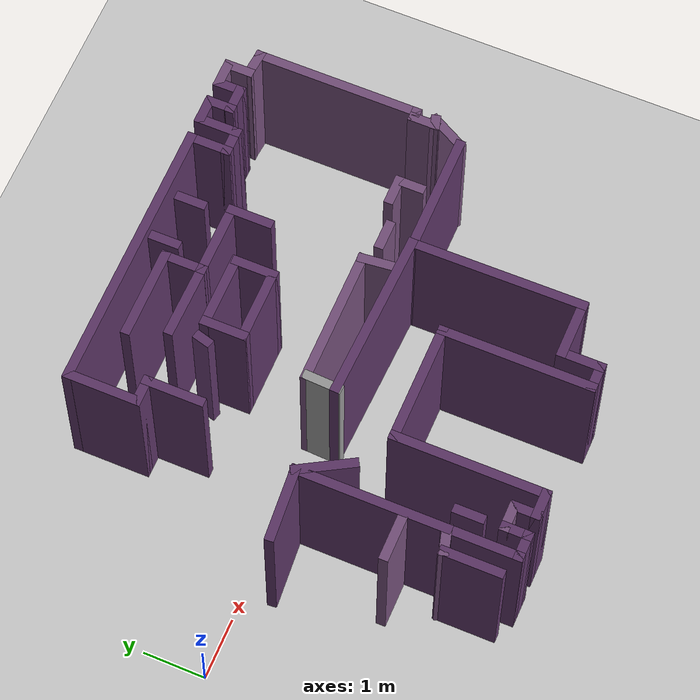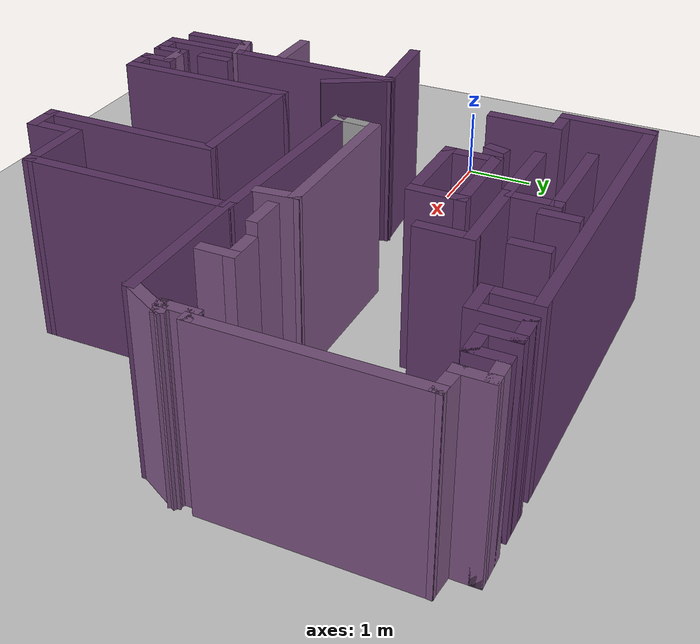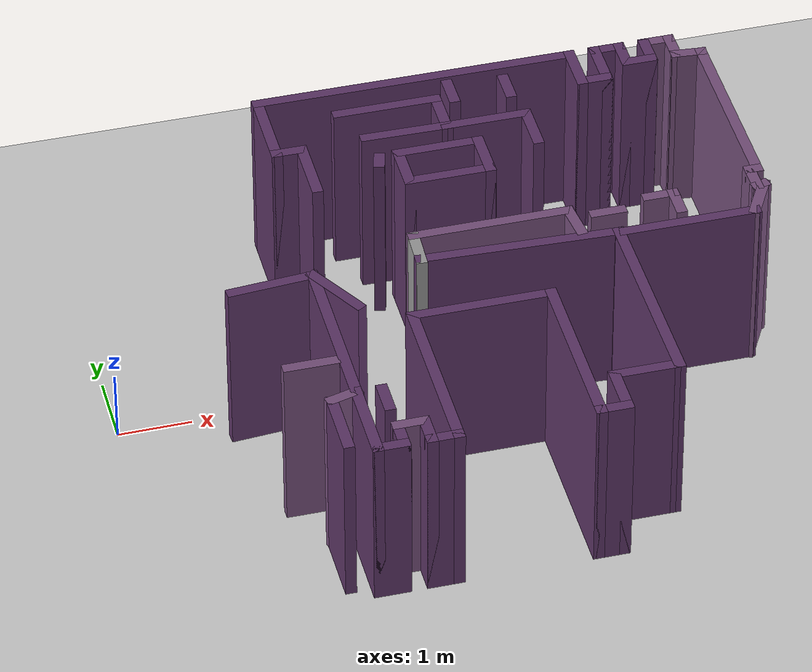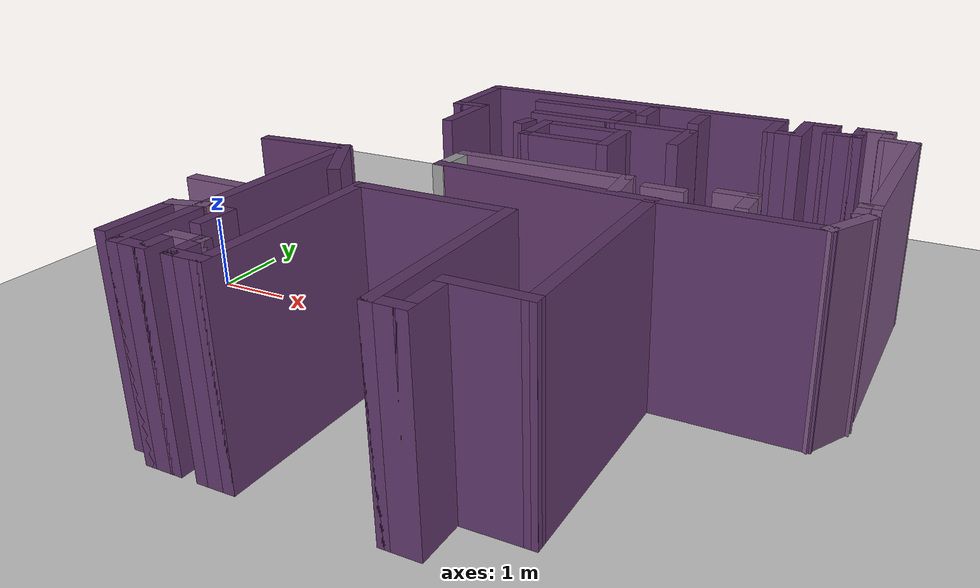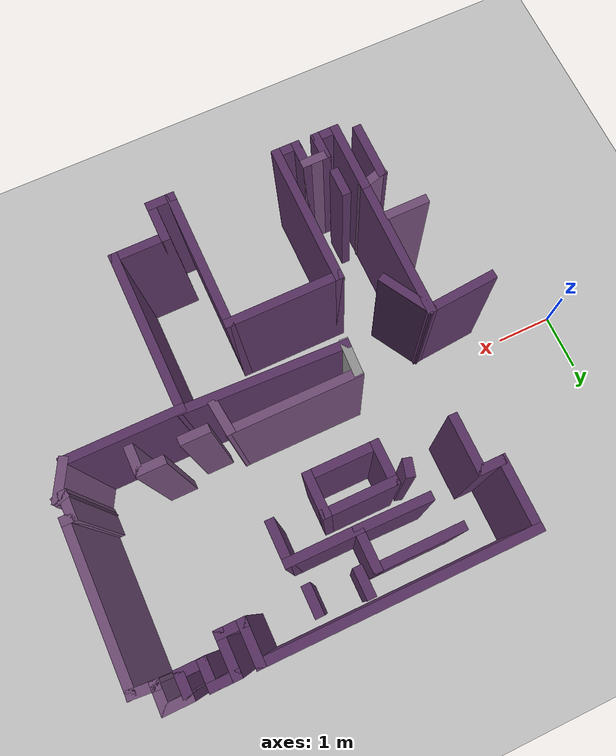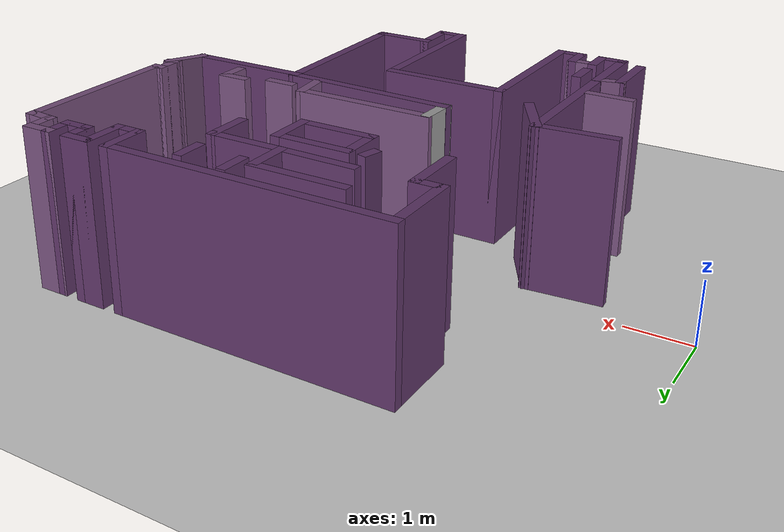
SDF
<sdf version="1.6">
 <world name="default">
  <model name="ground_plane">
   <static>1</static>
   <link name="link">
    <collision name="collision">
     <geometry><plane><normal>0 0 1</normal><size>100 100</size></plane></geometry>
     <surface>
      <contact><collide_bitmask>65535</collide_bitmask></contact>
      <friction><ode><mu>100</mu><mu2>50</mu2></ode></friction>
     </surface>
    </collision>
    <visual name="visual">
     <cast_shadows>0</cast_shadows>
     <geometry><plane><normal>0 0 1</normal><size>100 100</size></plane></geometry>
     <material>
      <script><uri>file://media/materials/scripts/gazebo.material</uri><name>Gazebo/Grey</name></script>
     </material>
    </visual>
   </link>
  </model>
  <model name="map_35">
   <pose>1.49139 -0.27307 0 0 -0 0</pose>
   <link name="Wall_0">
    <collision name="Wall_0_Collision">
     <geometry><box><size>4.5 0.15 2.5</size></box></geometry>
     <pose>0 0 1.25 0 -0 0</pose>
    </collision>
    <visual name="Wall_0_Visual">
     <pose>0 0 1.25 0 -0 0</pose>
     <geometry><box><size>4.5 0.15 2.5</size></box></geometry>
     <material>
      <script><uri>file://media/materials/scripts/gazebo.material</uri><name>Gazebo/Grey</name></script>
      <ambient>0.360784 0.207843 0.4 1</ambient>
     </material>
     <meta><layer>0</layer></meta>
    </visual>
    <pose>3.38761 3.57249 0 0 -0 3.14159</pose>
   </link>
   <link name="Wall_1">
    <collision name="Wall_1_Collision">
     <geometry><box><size>1.25 0.15 2.5</size></box></geometry>
     <pose>0 0 1.25 0 -0 0</pose>
    </collision>
    <visual name="Wall_1_Visual">
     <pose>0 0 1.25 0 -0 0</pose>
     <geometry><box><size>1.25 0.15 2.5</size></box></geometry>
     <material>
      <script><uri>file://media/materials/scripts/gazebo.material</uri><name>Gazebo/Grey</name></script>
      <ambient>0.360784 0.207843 0.4 1</ambient>
     </material>
     <meta><layer>0</layer></meta>
    </visual>
    <pose>1.21261 3.02249 0 0 -0 -1.5708</pose>
   </link>
   <link name="Wall_103">
    <collision name="Wall_103_Collision">
     <geometry><box><size>2 0.15 2.5</size></box></geometry>
     <pose>0 0 1.25 0 -0 0</pose>
    </collision>
    <visual name="Wall_103_Visual">
     <pose>0 0 1.25 0 -0 0</pose>
     <geometry><box><size>2 0.15 2.5</size></box></geometry>
     <material>
      <script><uri>file://media/materials/scripts/gazebo.material</uri><name>Gazebo/Grey</name></script>
      <ambient>0.360784 0.207843 0.4 1</ambient>
     </material>
     <meta><layer>0</layer></meta>
    </visual>
    <pose>6.1106 -0.231333 0 0 -0 0</pose>
   </link>
   <link name="Wall_104">
    <collision name="Wall_104_Collision">
     <geometry><box><size>0.717797 0.15 2.5</size></box></geometry>
     <pose>0 0 1.25 0 -0 0</pose>
    </collision>
    <visual name="Wall_104_Visual">
     <pose>0 0 1.25 0 -0 0</pose>
     <geometry><box><size>0.717797 0.15 2.5</size></box></geometry>
     <material>
      <script><uri>file://media/materials/scripts/gazebo.material</uri><name>Gazebo/Grey</name></script>
      <ambient>0.458824 0.313726 0.482353 1</ambient>
     </material>
     <meta><layer>0</layer></meta>
    </visual>
    <pose>7.17066 0.018383 0 0 -0 1.07501</pose>
   </link>
   <link name="Wall_105">
    <collision name="Wall_105_Collision">
     <geometry><box><size>0.25 0.15 2.5</size></box></geometry>
     <pose>0 0 1.25 0 -0 0</pose>
    </collision>
    <visual name="Wall_105_Visual">
     <pose>0 0 1.25 0 -0 0</pose>
     <geometry><box><size>0.25 0.15 2.5</size></box></geometry>
     <material>
      <script><uri>file://media/materials/scripts/gazebo.material</uri><name>Gazebo/Grey</name></script>
      <ambient>0.458824 0.313726 0.482353 1</ambient>
     </material>
     <meta><layer>0</layer></meta>
    </visual>
    <pose>7.25742 0.255158 0 0 -0 -2.87979</pose>
   </link>
   <link name="Wall_106">
    <collision name="Wall_106_Collision">
     <geometry><box><size>0.5 0.15 2.5</size></box></geometry>
     <pose>0 0 1.25 0 -0 0</pose>
    </collision>
    <visual name="Wall_106_Visual">
     <pose>0 0 1.25 0 -0 0</pose>
     <geometry><box><size>0.5 0.15 2.5</size></box></geometry>
     <material>
      <script><uri>file://media/materials/scripts/gazebo.material</uri><name>Gazebo/Grey</name></script>
      <ambient>0.458824 0.313726 0.482353 1</ambient>
     </material>
     <meta><layer>0</layer></meta>
    </visual>
    <pose>7.20912 0.417217 0 0 -0 1.5708</pose>
   </link>
   <link name="Wall_107">
    <collision name="Wall_107_Collision">
     <geometry><box><size>0.25 0.15 2.5</size></box></geometry>
     <pose>0 0 1.25 0 -0 0</pose>
    </collision>
    <visual name="Wall_107_Visual">
     <pose>0 0 1.25 0 -0 0</pose>
     <geometry><box><size>0.25 0.15 2.5</size></box></geometry>
     <material>
      <script><uri>file://media/materials/scripts/gazebo.material</uri><name>Gazebo/Grey</name></script>
      <ambient>0.458824 0.313726 0.482353 1</ambient>
     </material>
     <meta><layer>0</layer></meta>
    </visual>
    <pose>7.25912 0.592217 0 0 -0 0</pose>
   </link>
   <link name="Wall_108">
    <collision name="Wall_108_Collision">
     <geometry><box><size>2.75 0.15 2.5</size></box></geometry>
     <pose>0 0 1.25 0 -0 0</pose>
    </collision>
    <visual name="Wall_108_Visual">
     <pose>0 0 1.25 0 -0 0</pose>
     <geometry><box><size>2.75 0.15 2.5</size></box></geometry>
     <material>
      <script><uri>file://media/materials/scripts/gazebo.material</uri><name>Gazebo/Grey</name></script>
      <ambient>0.458824 0.313726 0.482353 1</ambient>
     </material>
     <meta><layer>0</layer></meta>
    </visual>
    <pose>7.30912 1.89222 0 0 -0 1.5708</pose>
   </link>
   <link name="Wall_115">
    <collision name="Wall_115_Collision">
     <geometry><box><size>0.75 0.15 2.5</size></box></geometry>
     <pose>0 0 1.25 0 -0 0</pose>
    </collision>
    <visual name="Wall_115_Visual">
     <pose>0 0 1.25 0 -0 0</pose>
     <geometry><box><size>0.75 0.15 2.5</size></box></geometry>
     <material>
      <script><uri>file://media/materials/scripts/gazebo.material</uri><name>Gazebo/Grey</name></script>
      <ambient>0.360784 0.207843 0.4 1</ambient>
     </material>
     <meta><layer>0</layer></meta>
    </visual>
    <pose>5.56261 3.27249 0 0 -0 -1.5708</pose>
   </link>
   <link name="Wall_116">
    <collision name="Wall_116_Collision">
     <geometry><box><size>0.5 0.15 2.5</size></box></geometry>
     <pose>0 0 1.25 0 -0 0</pose>
    </collision>
    <visual name="Wall_116_Visual">
     <pose>0 0 1.25 0 -0 0</pose>
     <geometry><box><size>0.5 0.15 2.5</size></box></geometry>
     <material>
      <script><uri>file://media/materials/scripts/gazebo.material</uri><name>Gazebo/Grey</name></script>
      <ambient>0.360784 0.207843 0.4 1</ambient>
     </material>
     <meta><layer>0</layer></meta>
    </visual>
    <pose>5.73761 2.97249 0 0 -0 0</pose>
   </link>
   <link name="Wall_119">
    <collision name="Wall_119_Collision">
     <geometry><box><size>0.75 0.15 2.5</size></box></geometry>
     <pose>0 0 1.25 0 -0 0</pose>
    </collision>
    <visual name="Wall_119_Visual">
     <pose>0 0 1.25 0 -0 0</pose>
     <geometry><box><size>0.75 0.15 2.5</size></box></geometry>
     <material>
      <script><uri>file://media/materials/scripts/gazebo.material</uri><name>Gazebo/Grey</name></script>
      <ambient>0.360784 0.207843 0.4 1</ambient>
     </material>
     <meta><layer>0</layer></meta>
    </visual>
    <pose>5.91261 3.27249 0 0 -0 1.5708</pose>
   </link>
   <link name="Wall_120">
    <collision name="Wall_120_Collision">
     <geometry><box><size>0.5 0.15 2.5</size></box></geometry>
     <pose>0 0 1.25 0 -0 0</pose>
    </collision>
    <visual name="Wall_120_Visual">
     <pose>0 0 1.25 0 -0 0</pose>
     <geometry><box><size>0.5 0.15 2.5</size></box></geometry>
     <material>
      <script><uri>file://media/materials/scripts/gazebo.material</uri><name>Gazebo/Grey</name></script>
      <ambient>0.360784 0.207843 0.4 1</ambient>
     </material>
     <meta><layer>0</layer></meta>
    </visual>
    <pose>6.08761 3.57249 0 0 -0 0</pose>
   </link>
   <link name="Wall_121">
    <collision name="Wall_121_Collision">
     <geometry><box><size>0.5 0.15 2.5</size></box></geometry>
     <pose>0 0 1.25 0 -0 0</pose>
    </collision>
    <visual name="Wall_121_Visual">
     <pose>0 0 1.25 0 -0 0</pose>
     <geometry><box><size>0.5 0.15 2.5</size></box></geometry>
     <material>
      <script><uri>file://media/materials/scripts/gazebo.material</uri><name>Gazebo/Grey</name></script>
      <ambient>0.360784 0.207843 0.4 1</ambient>
     </material>
     <meta><layer>0</layer></meta>
    </visual>
    <pose>6.26261 3.39749 0 0 -0 -1.5708</pose>
   </link>
   <link name="Wall_122">
    <collision name="Wall_122_Collision">
     <geometry><box><size>0.5 0.15 2.5</size></box></geometry>
     <pose>0 0 1.25 0 -0 0</pose>
    </collision>
    <visual name="Wall_122_Visual">
     <pose>0 0 1.25 0 -0 0</pose>
     <geometry><box><size>0.5 0.15 2.5</size></box></geometry>
     <material>
      <script><uri>file://media/materials/scripts/gazebo.material</uri><name>Gazebo/Grey</name></script>
      <ambient>0.360784 0.207843 0.4 1</ambient>
     </material>
     <meta><layer>0</layer></meta>
    </visual>
    <pose>6.43761 3.22249 0 0 -0 0</pose>
   </link>
   <link name="Wall_123">
    <collision name="Wall_123_Collision">
     <geometry><box><size>0.5 0.15 2.5</size></box></geometry>
     <pose>0 0 1.25 0 -0 0</pose>
    </collision>
    <visual name="Wall_123_Visual">
     <pose>0 0 1.25 0 -0 0</pose>
     <geometry><box><size>0.5 0.15 2.5</size></box></geometry>
     <material>
      <script><uri>file://media/materials/scripts/gazebo.material</uri><name>Gazebo/Grey</name></script>
      <ambient>0.360784 0.207843 0.4 1</ambient>
     </material>
     <meta><layer>0</layer></meta>
    </visual>
    <pose>6.61261 3.39749 0 0 -0 1.5708</pose>
   </link>
   <link name="Wall_124">
    <collision name="Wall_124_Collision">
     <geometry><box><size>0.5 0.15 2.5</size></box></geometry>
     <pose>0 0 1.25 0 -0 0</pose>
    </collision>
    <visual name="Wall_124_Visual">
     <pose>0 0 1.25 0 -0 0</pose>
     <geometry><box><size>0.5 0.15 2.5</size></box></geometry>
     <material>
      <script><uri>file://media/materials/scripts/gazebo.material</uri><name>Gazebo/Grey</name></script>
      <ambient>0.458824 0.313726 0.482353 1</ambient>
     </material>
     <meta><layer>0</layer></meta>
    </visual>
    <pose>6.78761 3.57249 0 0 -0 0</pose>
   </link>
   <link name="Wall_125">
    <collision name="Wall_125_Collision">
     <geometry><box><size>0.5 0.15 2.5</size></box></geometry>
     <pose>0 0 1.25 0 -0 0</pose>
    </collision>
    <visual name="Wall_125_Visual">
     <pose>0 0 1.25 0 -0 0</pose>
     <geometry><box><size>0.5 0.15 2.5</size></box></geometry>
     <material>
      <script><uri>file://media/materials/scripts/gazebo.material</uri><name>Gazebo/Grey</name></script>
      <ambient>0.458824 0.313726 0.482353 1</ambient>
     </material>
     <meta><layer>0</layer></meta>
    </visual>
    <pose>6.96261 3.39749 0 0 -0 -1.5708</pose>
   </link>
   <link name="Wall_126">
    <collision name="Wall_126_Collision">
     <geometry><box><size>0.497826 0.15 2.5</size></box></geometry>
     <pose>0 0 1.25 0 -0 0</pose>
    </collision>
    <visual name="Wall_126_Visual">
     <pose>0 0 1.25 0 -0 0</pose>
     <geometry><box><size>0.497826 0.15 2.5</size></box></geometry>
     <material>
      <script><uri>file://media/materials/scripts/gazebo.material</uri><name>Gazebo/Grey</name></script>
      <ambient>0.458824 0.313726 0.482353 1</ambient>
     </material>
     <meta><layer>0</layer></meta>
    </visual>
    <pose>7.13587 3.20735 0 0 -0 -0.087136</pose>
   </link>
   <link name="Wall_128">
    <collision name="Wall_128_Collision">
     <geometry><box><size>0.75 0.15 2.5</size></box></geometry>
     <pose>0 0 1.25 0 -0 0</pose>
    </collision>
    <visual name="Wall_128_Visual">
     <pose>0 0 1.25 0 -0 0</pose>
     <geometry><box><size>0.75 0.15 2.5</size></box></geometry>
     <material>
      <script><uri>file://media/materials/scripts/gazebo.material</uri><name>Gazebo/Grey</name></script>
      <ambient>0.360784 0.207843 0.4 1</ambient>
     </material>
     <meta><layer>0</layer></meta>
    </visual>
    <pose>2.78694 1.78408 0 0 -0 -1.5708</pose>
   </link>
   <link name="Wall_129">
    <collision name="Wall_129_Collision">
     <geometry><box><size>1.25 0.15 2.5</size></box></geometry>
     <pose>0 0 1.25 0 -0 0</pose>
    </collision>
    <visual name="Wall_129_Visual">
     <pose>0 0 1.25 0 -0 0</pose>
     <geometry><box><size>1.25 0.15 2.5</size></box></geometry>
     <material>
      <script><uri>file://media/materials/scripts/gazebo.material</uri><name>Gazebo/Grey</name></script>
      <ambient>0.360784 0.207843 0.4 1</ambient>
     </material>
     <meta><layer>0</layer></meta>
    </visual>
    <pose>3.33694 1.48408 0 0 -0 0</pose>
   </link>
   <link name="Wall_130">
    <collision name="Wall_130_Collision">
     <geometry><box><size>0.75 0.15 2.5</size></box></geometry>
     <pose>0 0 1.25 0 -0 0</pose>
    </collision>
    <visual name="Wall_130_Visual">
     <pose>0 0 1.25 0 -0 0</pose>
     <geometry><box><size>0.75 0.15 2.5</size></box></geometry>
     <material>
      <script><uri>file://media/materials/scripts/gazebo.material</uri><name>Gazebo/Grey</name></script>
      <ambient>0.360784 0.207843 0.4 1</ambient>
     </material>
     <meta><layer>0</layer></meta>
    </visual>
    <pose>3.88694 1.78408 0 0 -0 1.5708</pose>
   </link>
   <link name="Wall_131">
    <collision name="Wall_131_Collision">
     <geometry><box><size>1.25 0.15 2.5</size></box></geometry>
     <pose>0 0 1.25 0 -0 0</pose>
    </collision>
    <visual name="Wall_131_Visual">
     <pose>0 0 1.25 0 -0 0</pose>
     <geometry><box><size>1.25 0.15 2.5</size></box></geometry>
     <material>
      <script><uri>file://media/materials/scripts/gazebo.material</uri><name>Gazebo/Grey</name></script>
      <ambient>0.360784 0.207843 0.4 1</ambient>
     </material>
     <meta><layer>0</layer></meta>
    </visual>
    <pose>3.33694 2.08408 0 0 -0 3.14159</pose>
   </link>
   <link name="Wall_133">
    <collision name="Wall_133_Collision">
     <geometry><box><size>0.3 0.15 2.5</size></box></geometry>
     <pose>0 0 1.25 0 -0 0</pose>
    </collision>
    <visual name="Wall_133_Visual">
     <pose>0 0 1.25 0 -0 0</pose>
     <geometry><box><size>0.3 0.15 2.5</size></box></geometry>
     <material>
      <script><uri>file://media/materials/scripts/gazebo.material</uri><name>Gazebo/Grey</name></script>
      <ambient>0.360784 0.207843 0.4 1</ambient>
     </material>
     <meta><layer>0</layer></meta>
    </visual>
    <pose>2.50465 1.99562 0 0 -0 1.309</pose>
   </link>
   <link name="Wall_135">
    <collision name="Wall_135_Collision">
     <geometry><box><size>1.5 0.15 2.5</size></box></geometry>
     <pose>0 0 1.25 0 -0 0</pose>
    </collision>
    <visual name="Wall_135_Visual">
     <pose>0 0 1.25 0 -0 0</pose>
     <geometry><box><size>1.5 0.15 2.5</size></box></geometry>
     <material>
      <script><uri>file://media/materials/scripts/gazebo.material</uri><name>Gazebo/Grey</name></script>
      <ambient>0.360784 0.207843 0.4 1</ambient>
     </material>
     <meta><layer>0</layer></meta>
    </visual>
    <pose>2.87865 3.08976 0 0 -0 0</pose>
   </link>
   <link name="Wall_136">
    <collision name="Wall_136_Collision">
     <geometry><box><size>0.75 0.15 2.5</size></box></geometry>
     <pose>0 0 1.25 0 -0 0</pose>
    </collision>
    <visual name="Wall_136_Visual">
     <pose>0 0 1.25 0 -0 0</pose>
     <geometry><box><size>0.75 0.15 2.5</size></box></geometry>
     <material>
      <script><uri>file://media/materials/scripts/gazebo.material</uri><name>Gazebo/Grey</name></script>
      <ambient>0.360784 0.207843 0.4 1</ambient>
     </material>
     <meta><layer>0</layer></meta>
    </visual>
    <pose>3.55365 2.78976 0 0 -0 -1.5708</pose>
   </link>
   <link name="Wall_137">
    <collision name="Wall_137_Collision">
     <geometry><box><size>1.25 0.15 2.5</size></box></geometry>
     <pose>0 0 1.25 0 -0 0</pose>
    </collision>
    <visual name="Wall_137_Visual">
     <pose>0 0 1.25 0 -0 0</pose>
     <geometry><box><size>1.25 0.15 2.5</size></box></geometry>
     <material>
      <script><uri>file://media/materials/scripts/gazebo.material</uri><name>Gazebo/Grey</name></script>
      <ambient>0.360784 0.207843 0.4 1</ambient>
     </material>
     <meta><layer>0</layer></meta>
    </visual>
    <pose>4.10365 2.48976 0 0 -0 0</pose>
   </link>
   <link name="Wall_138">
    <collision name="Wall_138_Collision">
     <geometry><box><size>0.75 0.15 2.5</size></box></geometry>
     <pose>0 0 1.25 0 -0 0</pose>
    </collision>
    <visual name="Wall_138_Visual">
     <pose>0 0 1.25 0 -0 0</pose>
     <geometry><box><size>0.75 0.15 2.5</size></box></geometry>
     <material>
      <script><uri>file://media/materials/scripts/gazebo.material</uri><name>Gazebo/Grey</name></script>
      <ambient>0.360784 0.207843 0.4 1</ambient>
     </material>
     <meta><layer>0</layer></meta>
    </visual>
    <pose>4.65365 2.18976 0 0 -0 -1.5708</pose>
   </link>
   <link name="Wall_140">
    <collision name="Wall_140_Collision">
     <geometry><box><size>1.25876 0.15 2.5</size></box></geometry>
     <pose>0 0 1.25 0 -0 0</pose>
    </collision>
    <visual name="Wall_140_Visual">
     <pose>0 0 1.25 0 -0 0</pose>
     <geometry><box><size>1.25876 0.15 2.5</size></box></geometry>
     <material>
      <script><uri>file://media/materials/scripts/gazebo.material</uri><name>Gazebo/Grey</name></script>
      <ambient>0.360784 0.207843 0.4 1</ambient>
     </material>
     <meta><layer>0</layer></meta>
    </visual>
    <pose>2.99933 2.49811 0 0 -0 -0.015068</pose>
   </link>
   <link name="Wall_142">
    <collision name="Wall_142_Collision">
     <geometry><box><size>0.5 0.15 2.5</size></box></geometry>
     <pose>0 0 1.25 0 -0 0</pose>
    </collision>
    <visual name="Wall_142_Visual">
     <pose>0 0 1.25 0 -0 0</pose>
     <geometry><box><size>0.5 0.15 2.5</size></box></geometry>
     <material>
      <script><uri>file://media/materials/scripts/gazebo.material</uri><name>Gazebo/Grey</name></script>
      <ambient>0.360784 0.207843 0.4 1</ambient>
     </material>
     <meta><layer>0</layer></meta>
    </visual>
    <pose>3.79262 3.19635 0 0 -0 -1.5708</pose>
   </link>
   <link name="Wall_144">
    <collision name="Wall_144_Collision">
     <geometry><box><size>0.5 0.15 2.5</size></box></geometry>
     <pose>0 0 1.25 0 -0 0</pose>
    </collision>
    <visual name="Wall_144_Visual">
     <pose>0 0 1.25 0 -0 0</pose>
     <geometry><box><size>0.5 0.15 2.5</size></box></geometry>
     <material>
      <script><uri>file://media/materials/scripts/gazebo.material</uri><name>Gazebo/Grey</name></script>
      <ambient>0.360784 0.207843 0.4 1</ambient>
     </material>
     <meta><layer>0</layer></meta>
    </visual>
    <pose>4.55693 3.1159 0 0 -0 -1.5708</pose>
   </link>
   <link name="Wall_146">
    <collision name="Wall_146_Collision">
     <geometry><box><size>0.5 0.15 2.5</size></box></geometry>
     <pose>0 0 1.25 0 -0 0</pose>
    </collision>
    <visual name="Wall_146_Visual">
     <pose>0 0 1.25 0 -0 0</pose>
     <geometry><box><size>0.5 0.15 2.5</size></box></geometry>
     <material>
      <script><uri>file://media/materials/scripts/gazebo.material</uri><name>Gazebo/Grey</name></script>
      <ambient>0.458824 0.313726 0.482353 1</ambient>
     </material>
     <meta><layer>0</layer></meta>
    </visual>
    <pose>5.15432 0.213521 0 0 -0 0</pose>
   </link>
   <link name="Wall_150">
    <collision name="Wall_150_Collision">
     <geometry><box><size>0.5 0.15 2.5</size></box></geometry>
     <pose>0 0 1.25 0 -0 0</pose>
    </collision>
    <visual name="Wall_150_Visual">
     <pose>0 0 1.25 0 -0 0</pose>
     <geometry><box><size>0.5 0.15 2.5</size></box></geometry>
     <material>
      <script><uri>file://media/materials/scripts/gazebo.material</uri><name>Gazebo/Grey</name></script>
      <ambient>0.458824 0.313726 0.482353 1</ambient>
     </material>
     <meta><layer>0</layer></meta>
    </visual>
    <pose>5.91864 0.37443 0 0 -0 0</pose>
   </link>
   <link name="Wall_151">
    <collision name="Wall_151_Collision">
     <geometry><box><size>0.5 0.15 2.5</size></box></geometry>
     <pose>0 0 1.25 0 -0 0</pose>
    </collision>
    <visual name="Wall_151_Visual">
     <pose>0 0 1.25 0 -0 0</pose>
     <geometry><box><size>0.5 0.15 2.5</size></box></geometry>
     <material>
      <script><uri>file://media/materials/scripts/gazebo.material</uri><name>Gazebo/Grey</name></script>
      <ambient>0.458824 0.313726 0.482353 1</ambient>
     </material>
     <meta><layer>0</layer></meta>
    </visual>
    <pose>6.09363 0.199429 0 0 -0 -1.5708</pose>
   </link>
   <link name="Wall_153">
    <collision name="Wall_153_Collision">
     <geometry><box><size>0.5 0.15 2.5</size></box></geometry>
     <pose>0 0 1.25 0 -0 0</pose>
    </collision>
    <visual name="Wall_153_Visual">
     <pose>0 0 1.25 0 -0 0</pose>
     <geometry><box><size>0.5 0.15 2.5</size></box></geometry>
     <material>
      <script><uri>file://media/materials/scripts/gazebo.material</uri><name>Gazebo/Grey</name></script>
      <ambient>0.360784 0.207843 0.4 1</ambient>
     </material>
     <meta><layer>0</layer></meta>
    </visual>
    <pose>1.43933 -2.63658 0 0 -0 -1.5708</pose>
   </link>
   <link name="Wall_4">
    <collision name="Wall_4_Collision">
     <geometry><box><size>0.5 0.15 2.5</size></box></geometry>
     <pose>0 0 1.25 0 -0 0</pose>
    </collision>
    <visual name="Wall_4_Visual">
     <pose>0 0 1.25 0 -0 0</pose>
     <geometry><box><size>0.5 0.15 2.5</size></box></geometry>
     <material>
      <script><uri>file://media/materials/scripts/gazebo.material</uri><name>Gazebo/Grey</name></script>
      <ambient>0.360784 0.207843 0.4 1</ambient>
     </material>
     <meta><layer>0</layer></meta>
    </visual>
    <pose>1.38761 2.47249 0 0 -0 0</pose>
   </link>
   <link name="Wall_5">
    <collision name="Wall_5_Collision">
     <geometry><box><size>1 0.15 2.5</size></box></geometry>
     <pose>0 0 1.25 0 -0 0</pose>
    </collision>
    <visual name="Wall_5_Visual">
     <pose>0 0 1.25 0 -0 0</pose>
     <geometry><box><size>1 0.15 2.5</size></box></geometry>
     <material>
      <script><uri>file://media/materials/scripts/gazebo.material</uri><name>Gazebo/Grey</name></script>
      <ambient>0.360784 0.207843 0.4 1</ambient>
     </material>
     <meta><layer>0</layer></meta>
    </visual>
    <pose>1.56261 2.04749 0 0 -0 -1.5708</pose>
   </link>
   <link name="Wall_58">
    <collision name="Wall_58_Collision">
     <geometry><box><size>1 0.15 2.5</size></box></geometry>
     <pose>0 0 1.25 0 -0 0</pose>
    </collision>
    <visual name="Wall_58_Visual">
     <pose>0 0 1.25 0 -0 0</pose>
     <geometry><box><size>1 0.15 2.5</size></box></geometry>
     <material>
      <script><uri>file://media/materials/scripts/gazebo.material</uri><name>Gazebo/Grey</name></script>
      <ambient>0.360784 0.207843 0.4 1</ambient>
     </material>
     <meta><layer>0</layer></meta>
    </visual>
    <pose>0.767638 -2.94749 0 0 -0 1.5708</pose>
   </link>
   <link name="Wall_64">
    <collision name="Wall_64_Collision">
     <geometry><box><size>0.75 0.15 2.5</size></box></geometry>
     <pose>0 0 1.25 0 -0 0</pose>
    </collision>
    <visual name="Wall_64_Visual">
     <pose>0 0 1.25 0 -0 0</pose>
     <geometry><box><size>0.75 0.15 2.5</size></box></geometry>
     <material>
      <script><uri>file://media/materials/scripts/gazebo.material</uri><name>Gazebo/Grey</name></script>
      <ambient>0.458824 0.313726 0.482353 1</ambient>
     </material>
     <meta><layer>0</layer></meta>
    </visual>
    <pose>0.673311 -1.78113 0 0 -0 0</pose>
   </link>
   <link name="Wall_66">
    <collision name="Wall_66_Collision">
     <geometry><box><size>0.5 0.15 2.5</size></box></geometry>
     <pose>0 0 1.25 0 -0 0</pose>
    </collision>
    <visual name="Wall_66_Visual">
     <pose>0 0 1.25 0 -0 0</pose>
     <geometry><box><size>0.5 0.15 2.5</size></box></geometry>
     <material>
      <script><uri>file://media/materials/scripts/gazebo.material</uri><name>Gazebo/Grey</name></script>
      <ambient>0.458824 0.313726 0.482353 1</ambient>
     </material>
     <meta><layer>0</layer></meta>
    </visual>
    <pose>0.936675 -2.47719 0 0 -0 0.261799</pose>
   </link>
   <link name="Wall_67">
    <collision name="Wall_67_Collision">
     <geometry><box><size>2.5 0.15 2.5</size></box></geometry>
     <pose>0 0 1.25 0 -0 0</pose>
    </collision>
    <visual name="Wall_67_Visual">
     <pose>0 0 1.25 0 -0 0</pose>
     <geometry><box><size>2.5 0.15 2.5</size></box></geometry>
     <material>
      <script><uri>file://media/materials/scripts/gazebo.material</uri><name>Gazebo/Grey</name></script>
      <ambient>0.360784 0.207843 0.4 1</ambient>
     </material>
     <meta><layer>0</layer></meta>
    </visual>
    <pose>1.10571 -1.2569 0 0 -0 1.5708</pose>
   </link>
   <link name="Wall_73">
    <collision name="Wall_73_Collision">
     <geometry><box><size>1.24788 0.15 2.5</size></box></geometry>
     <pose>0 0 1.25 0 -0 0</pose>
    </collision>
    <visual name="Wall_73_Visual">
     <pose>0 0 1.25 0 -0 0</pose>
     <geometry><box><size>1.24788 0.15 2.5</size></box></geometry>
     <material>
      <script><uri>file://media/materials/scripts/gazebo.material</uri><name>Gazebo/Grey</name></script>
      <ambient>0.360784 0.207843 0.4 1</ambient>
     </material>
     <meta><layer>0</layer></meta>
    </visual>
    <pose>0.55849 -0.125269 0 0 -0 0.079086</pose>
   </link>
   <link name="Wall_75">
    <collision name="Wall_75_Collision">
     <geometry><box><size>1 0.15 2.5</size></box></geometry>
     <pose>0 0 1.25 0 -0 0</pose>
    </collision>
    <visual name="Wall_75_Visual">
     <pose>0 0 1.25 0 -0 0</pose>
     <geometry><box><size>1 0.15 2.5</size></box></geometry>
     <material>
      <script><uri>file://media/materials/scripts/gazebo.material</uri><name>Gazebo/Grey</name></script>
      <ambient>0.360784 0.207843 0.4 1</ambient>
     </material>
     <meta><layer>0</layer></meta>
    </visual>
    <pose>1.31821 -0.449962 0 0 -0 -1.0472</pose>
   </link>
   <link name="Wall_78">
    <collision name="Wall_78_Collision">
     <geometry><box><size>1.25 0.15 2.5</size></box></geometry>
     <pose>0 0 1.25 0 -0 0</pose>
    </collision>
    <visual name="Wall_78_Visual">
     <pose>0 0 1.25 0 -0 0</pose>
     <geometry><box><size>1.25 0.15 2.5</size></box></geometry>
     <material>
      <script><uri>file://media/materials/scripts/gazebo.material</uri><name>Gazebo/Grey</name></script>
      <ambient>0.360784 0.207843 0.4 1</ambient>
     </material>
     <meta><layer>0</layer></meta>
    </visual>
    <pose>1.10571 -2.9819 0 0 -0 -1.5708</pose>
   </link>
   <link name="Wall_79">
    <collision name="Wall_79_Collision">
     <geometry><box><size>0.5 0.15 2.5</size></box></geometry>
     <pose>0 0 1.25 0 -0 0</pose>
    </collision>
    <visual name="Wall_79_Visual">
     <pose>0 0 1.25 0 -0 0</pose>
     <geometry><box><size>0.5 0.15 2.5</size></box></geometry>
     <material>
      <script><uri>file://media/materials/scripts/gazebo.material</uri><name>Gazebo/Grey</name></script>
      <ambient>0.360784 0.207843 0.4 1</ambient>
     </material>
     <meta><layer>0</layer></meta>
    </visual>
    <pose>1.28071 -3.5319 0 0 -0 0</pose>
   </link>
   <link name="Wall_80">
    <collision name="Wall_80_Collision">
     <geometry><box><size>0.5 0.15 2.5</size></box></geometry>
     <pose>0 0 1.25 0 -0 0</pose>
    </collision>
    <visual name="Wall_80_Visual">
     <pose>0 0 1.25 0 -0 0</pose>
     <geometry><box><size>0.5 0.15 2.5</size></box></geometry>
     <material>
      <script><uri>file://media/materials/scripts/gazebo.material</uri><name>Gazebo/Grey</name></script>
      <ambient>0.360784 0.207843 0.4 1</ambient>
     </material>
     <meta><layer>0</layer></meta>
    </visual>
    <pose>1.45571 -3.3569 0 0 -0 1.5708</pose>
   </link>
   <link name="Wall_81">
    <collision name="Wall_81_Collision">
     <geometry><box><size>0.5 0.15 2.5</size></box></geometry>
     <pose>0 0 1.25 0 -0 0</pose>
    </collision>
    <visual name="Wall_81_Visual">
     <pose>0 0 1.25 0 -0 0</pose>
     <geometry><box><size>0.5 0.15 2.5</size></box></geometry>
     <material>
      <script><uri>file://media/materials/scripts/gazebo.material</uri><name>Gazebo/Grey</name></script>
      <ambient>0.458824 0.313726 0.482353 1</ambient>
     </material>
     <meta><layer>0</layer></meta>
    </visual>
    <pose>1.63071 -3.1819 0 0 -0 0</pose>
   </link>
   <link name="Wall_82">
    <collision name="Wall_82_Collision">
     <geometry><box><size>0.5 0.15 2.5</size></box></geometry>
     <pose>0 0 1.25 0 -0 0</pose>
    </collision>
    <visual name="Wall_82_Visual">
     <pose>0 0 1.25 0 -0 0</pose>
     <geometry><box><size>0.5 0.15 2.5</size></box></geometry>
     <material>
      <script><uri>file://media/materials/scripts/gazebo.material</uri><name>Gazebo/Grey</name></script>
      <ambient>0.360784 0.207843 0.4 1</ambient>
     </material>
     <meta><layer>0</layer></meta>
    </visual>
    <pose>1.80571 -3.3569 0 0 -0 -1.5708</pose>
   </link>
   <link name="Wall_83">
    <collision name="Wall_83_Collision">
     <geometry><box><size>0.5 0.15 2.5</size></box></geometry>
     <pose>0 0 1.25 0 -0 0</pose>
    </collision>
    <visual name="Wall_83_Visual">
     <pose>0 0 1.25 0 -0 0</pose>
     <geometry><box><size>0.5 0.15 2.5</size></box></geometry>
     <material>
      <script><uri>file://media/materials/scripts/gazebo.material</uri><name>Gazebo/Grey</name></script>
      <ambient>0.360784 0.207843 0.4 1</ambient>
     </material>
     <meta><layer>0</layer></meta>
    </visual>
    <pose>1.98071 -3.5319 0 0 -0 0</pose>
   </link>
   <link name="Wall_84">
    <collision name="Wall_84_Collision">
     <geometry><box><size>2.5 0.15 2.5</size></box></geometry>
     <pose>0 0 1.25 0 -0 0</pose>
    </collision>
    <visual name="Wall_84_Visual">
     <pose>0 0 1.25 0 -0 0</pose>
     <geometry><box><size>2.5 0.15 2.5</size></box></geometry>
     <material>
      <script><uri>file://media/materials/scripts/gazebo.material</uri><name>Gazebo/Grey</name></script>
      <ambient>0.360784 0.207843 0.4 1</ambient>
     </material>
     <meta><layer>0</layer></meta>
    </visual>
    <pose>2.15571 -2.3569 0 0 -0 1.5708</pose>
   </link>
   <link name="Wall_85">
    <collision name="Wall_85_Collision">
     <geometry><box><size>2 0.15 2.5</size></box></geometry>
     <pose>0 0 1.25 0 -0 0</pose>
    </collision>
    <visual name="Wall_85_Visual">
     <pose>0 0 1.25 0 -0 0</pose>
     <geometry><box><size>2 0.15 2.5</size></box></geometry>
     <material>
      <script><uri>file://media/materials/scripts/gazebo.material</uri><name>Gazebo/Grey</name></script>
      <ambient>0.360784 0.207843 0.4 1</ambient>
     </material>
     <meta><layer>0</layer></meta>
    </visual>
    <pose>3.08071 -1.1819 0 0 -0 0</pose>
   </link>
   <link name="Wall_86">
    <collision name="Wall_86_Collision">
     <geometry><box><size>2.5 0.15 2.5</size></box></geometry>
     <pose>0 0 1.25 0 -0 0</pose>
    </collision>
    <visual name="Wall_86_Visual">
     <pose>0 0 1.25 0 -0 0</pose>
     <geometry><box><size>2.5 0.15 2.5</size></box></geometry>
     <material>
      <script><uri>file://media/materials/scripts/gazebo.material</uri><name>Gazebo/Grey</name></script>
      <ambient>0.360784 0.207843 0.4 1</ambient>
     </material>
     <meta><layer>0</layer></meta>
    </visual>
    <pose>4.00571 -2.3569 0 0 -0 -1.5708</pose>
   </link>
   <link name="Wall_87">
    <collision name="Wall_87_Collision">
     <geometry><box><size>0.5 0.15 2.5</size></box></geometry>
     <pose>0 0 1.25 0 -0 0</pose>
    </collision>
    <visual name="Wall_87_Visual">
     <pose>0 0 1.25 0 -0 0</pose>
     <geometry><box><size>0.5 0.15 2.5</size></box></geometry>
     <material>
      <script><uri>file://media/materials/scripts/gazebo.material</uri><name>Gazebo/Grey</name></script>
      <ambient>0.360784 0.207843 0.4 1</ambient>
     </material>
     <meta><layer>0</layer></meta>
    </visual>
    <pose>4.18071 -3.5319 0 0 -0 0</pose>
   </link>
   <link name="Wall_88">
    <collision name="Wall_88_Collision">
     <geometry><box><size>0.75 0.15 2.5</size></box></geometry>
     <pose>0 0 1.25 0 -0 0</pose>
    </collision>
    <visual name="Wall_88_Visual">
     <pose>0 0 1.25 0 -0 0</pose>
     <geometry><box><size>0.75 0.15 2.5</size></box></geometry>
     <material>
      <script><uri>file://media/materials/scripts/gazebo.material</uri><name>Gazebo/Grey</name></script>
      <ambient>0.360784 0.207843 0.4 1</ambient>
     </material>
     <meta><layer>0</layer></meta>
    </visual>
    <pose>4.35571 -3.2319 0 0 -0 1.5708</pose>
   </link>
   <link name="Wall_89">
    <collision name="Wall_89_Collision">
     <geometry><box><size>1 0.15 2.5</size></box></geometry>
     <pose>0 0 1.25 0 -0 0</pose>
    </collision>
    <visual name="Wall_89_Visual">
     <pose>0 0 1.25 0 -0 0</pose>
     <geometry><box><size>1 0.15 2.5</size></box></geometry>
     <material>
      <script><uri>file://media/materials/scripts/gazebo.material</uri><name>Gazebo/Grey</name></script>
      <ambient>0.360784 0.207843 0.4 1</ambient>
     </material>
     <meta><layer>0</layer></meta>
    </visual>
    <pose>4.78071 -2.9319 0 0 -0 0</pose>
   </link>
   <link name="Wall_90">
    <collision name="Wall_90_Collision">
     <geometry><box><size>2.87076 0.15 2.5</size></box></geometry>
     <pose>0 0 1.25 0 -0 0</pose>
    </collision>
    <visual name="Wall_90_Visual">
     <pose>0 0 1.25 0 -0 0</pose>
     <geometry><box><size>2.87076 0.15 2.5</size></box></geometry>
     <material>
      <script><uri>file://media/materials/scripts/gazebo.material</uri><name>Gazebo/Grey</name></script>
      <ambient>0.360784 0.207843 0.4 1</ambient>
     </material>
     <meta><layer>0</layer></meta>
    </visual>
    <pose>5.19566 -1.57156 0 0 -0 1.57819</pose>
   </link>
   <link name="Wall_92">
    <collision name="Wall_92_Collision">
     <geometry><box><size>2.80161 0.15 2.5</size></box></geometry>
     <pose>0 0 1.25 0 -0 0</pose>
    </collision>
    <visual name="Wall_92_Visual">
     <pose>0 0 1.25 0 -0 0</pose>
     <geometry><box><size>2.80161 0.15 2.5</size></box></geometry>
     <material>
      <script><uri>file://media/materials/scripts/gazebo.material</uri><name>Gazebo/Grey</name></script>
      <ambient>0.360784 0.207843 0.4 1</ambient>
     </material>
     <meta><layer>0</layer></meta>
    </visual>
    <pose>3.86117 -0.160935 0 0 -0 3.10364</pose>
   </link>
   <link name="Wall_93">
    <collision name="Wall_93_Collision">
     <geometry><box><size>0.62974 0.15 2.5</size></box></geometry>
     <pose>0 0 1.25 0 -0 0</pose>
    </collision>
    <visual name="Wall_93_Visual">
     <pose>0 0 1.25 0 -0 0</pose>
     <geometry><box><size>0.62974 0.15 2.5</size></box></geometry>
     <material>
      <script><uri>file://media/materials/scripts/gazebo.material</uri><name>Gazebo/Grey</name></script>
      <ambient>1 1 1 1</ambient>
     </material>
     <meta><layer>0</layer></meta>
    </visual>
    <pose>2.54679 0.108894 0 0 -0 1.52886</pose>
   </link>
   <link name="Wall_94">
    <collision name="Wall_94_Collision">
     <geometry><box><size>2.25 0.15 2.5</size></box></geometry>
     <pose>0 0 1.25 0 -0 0</pose>
    </collision>
    <visual name="Wall_94_Visual">
     <pose>0 0 1.25 0 -0 0</pose>
     <geometry><box><size>2.25 0.15 2.5</size></box></geometry>
     <material>
      <script><uri>file://media/materials/scripts/gazebo.material</uri><name>Gazebo/Grey</name></script>
      <ambient>0.458824 0.313726 0.482353 1</ambient>
     </material>
     <meta><layer>0</layer></meta>
    </visual>
    <pose>3.60685 0.368667 0 0 -0 0</pose>
   </link>
   <link name="Wall_95">
    <collision name="Wall_95_Collision">
     <geometry><box><size>0.60321 0.15 2.5</size></box></geometry>
     <pose>0 0 1.25 0 -0 0</pose>
    </collision>
    <visual name="Wall_95_Visual">
     <pose>0 0 1.25 0 -0 0</pose>
     <geometry><box><size>0.60321 0.15 2.5</size></box></geometry>
     <material>
      <script><uri>file://media/materials/scripts/gazebo.material</uri><name>Gazebo/Grey</name></script>
      <ambient>0.458824 0.313726 0.482353 1</ambient>
     </material>
     <meta><layer>0</layer></meta>
    </visual>
    <pose>4.68128 0.143383 0 0 -0 -1.46277</pose>
   </link>
   <static>1</static>
  </model>
 </world>
</sdf>
